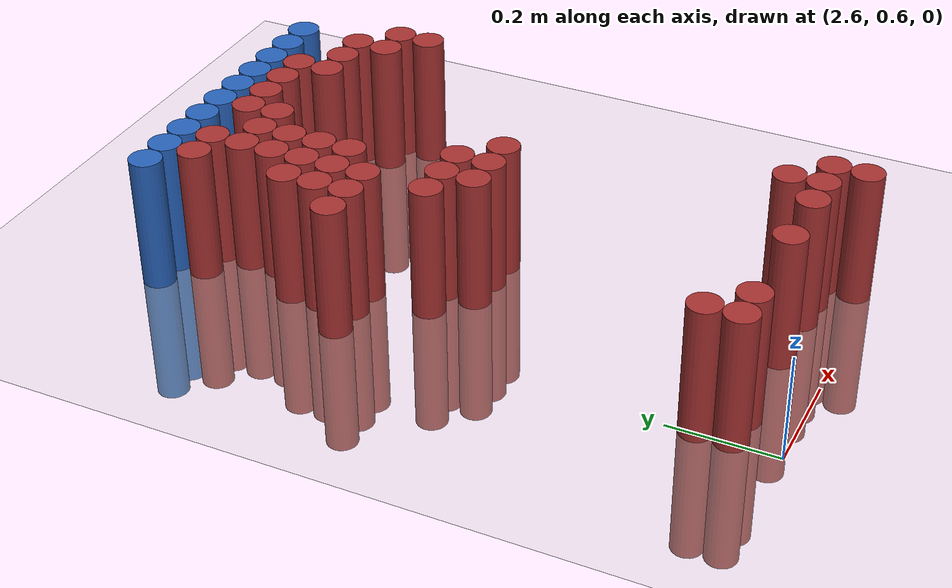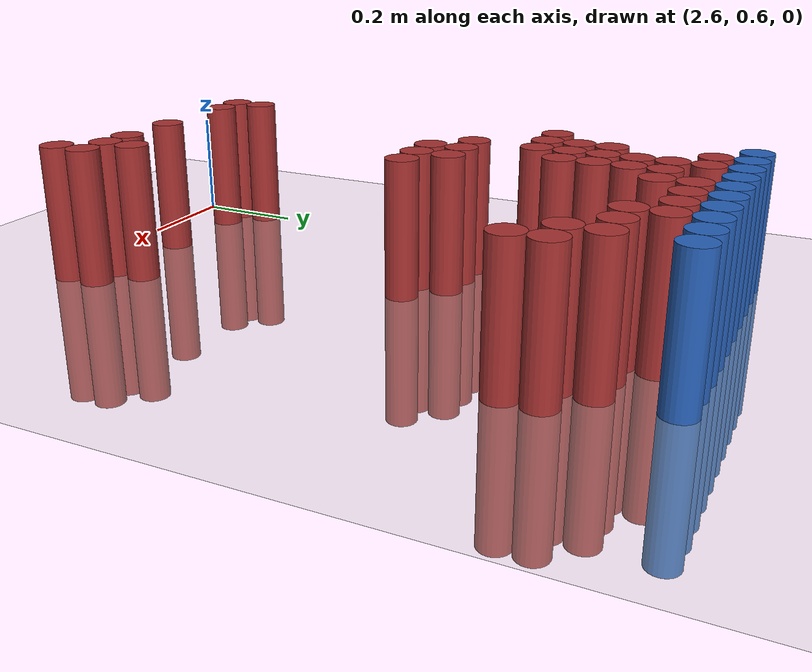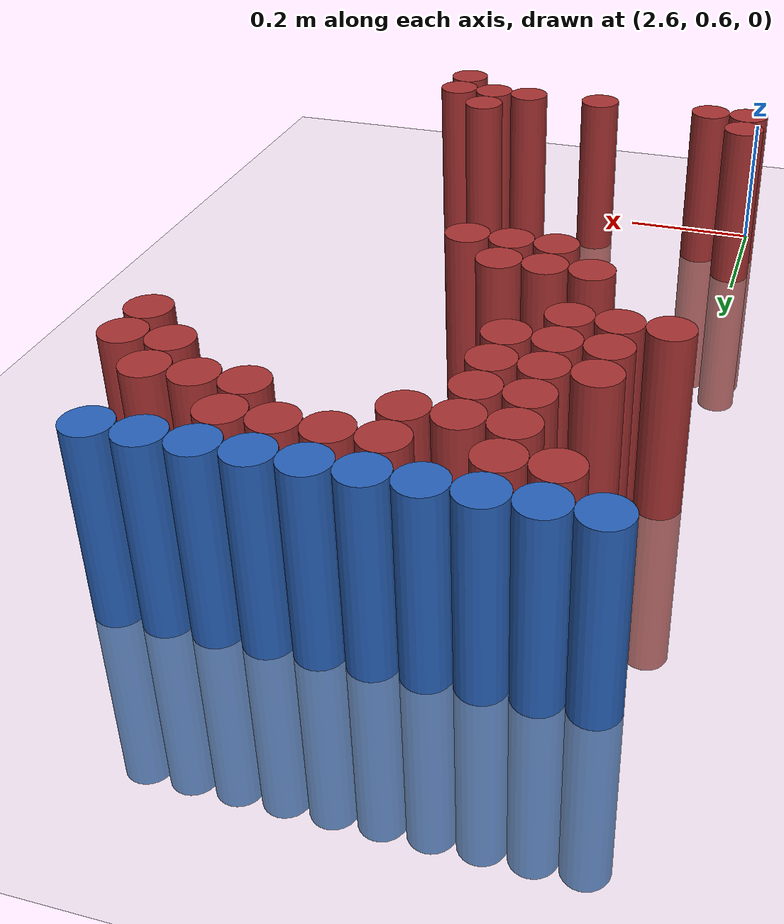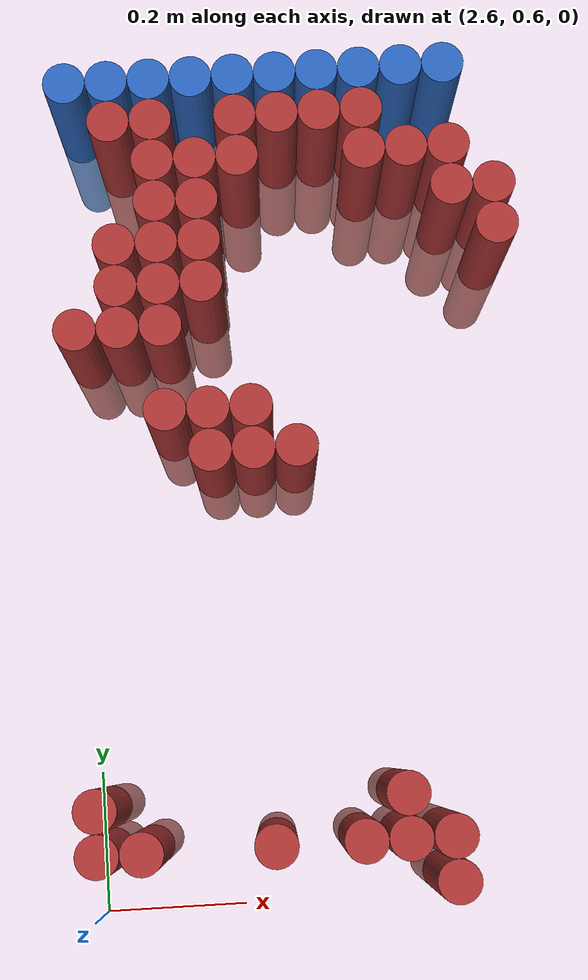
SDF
<sdf version="1.6">
 <world name="default">
  <model name="ground_plane">
   <static>1</static>
   <link name="link">
    <collision name="collision">
     <geometry><plane><normal>0 0 1</normal><size>100 100</size></plane></geometry>
     <surface><friction><ode><mu>100</mu><mu2>50</mu2></ode></friction></surface>
    </collision>
    <visual name="visual">
     <cast_shadows>0</cast_shadows>
     <geometry><plane><normal>0 0 1</normal><size>100 100</size></plane></geometry>
     <material>
      <script><uri>file://media/materials/scripts/gazebo.material</uri><name>Gazebo/Grey</name></script>
     </material>
    </visual>
   </link>
  </model>
  <model name="unit_cylinder_104">
   <static>1</static>
   <pose>2.610000 1.770000 0.000000 0.000000 0.000000 0.000000</pose>
   <link name="link">
    <inertial>
     <mass>1</mass>
     <inertia><ixx>0.145833</ixx><ixy>0</ixy><ixz>0</ixz><iyy>0.145833</iyy><iyz>0</iyz><izz>0.125</izz></inertia>
    </inertial>
    <collision name="collision">
     <geometry><cylinder><radius>0.030000</radius><length>0.5</length></cylinder></geometry>
    </collision>
    <visual name="visual">
     <geometry><cylinder><radius>0.030000</radius><length>0.5</length></cylinder></geometry>
     <material>
      <ambient>0.152000 0.379000 0.720000 1</ambient>
      <diffuse>0.152000 0.379000 0.720000 1</diffuse>
     </material>
     <material>
      <script><name>Gazebo/Grey</name><uri>file://media/materials/scripts/gazebo.material</uri></script>
     </material>
    </visual>
   </link>
  </model>
  <model name="unit_cylinder_105">
   <static>1</static>
   <pose>2.670000 1.770000 0.000000 0.000000 0.000000 0.000000</pose>
   <link name="link">
    <inertial>
     <mass>1</mass>
     <inertia><ixx>0.145833</ixx><ixy>0</ixy><ixz>0</ixz><iyy>0.145833</iyy><iyz>0</iyz><izz>0.125</izz></inertia>
    </inertial>
    <collision name="collision">
     <geometry><cylinder><radius>0.030000</radius><length>0.5</length></cylinder></geometry>
    </collision>
    <visual name="visual">
     <geometry><cylinder><radius>0.030000</radius><length>0.5</length></cylinder></geometry>
     <material>
      <ambient>0.152000 0.379000 0.720000 1</ambient>
      <diffuse>0.152000 0.379000 0.720000 1</diffuse>
     </material>
     <material>
      <script><name>Gazebo/Grey</name><uri>file://media/materials/scripts/gazebo.material</uri></script>
     </material>
    </visual>
   </link>
  </model>
  <model name="unit_cylinder_106">
   <static>1</static>
   <pose>2.730000 1.770000 0.000000 0.000000 0.000000 0.000000</pose>
   <link name="link">
    <inertial>
     <mass>1</mass>
     <inertia><ixx>0.145833</ixx><ixy>0</ixy><ixz>0</ixz><iyy>0.145833</iyy><iyz>0</iyz><izz>0.125</izz></inertia>
    </inertial>
    <collision name="collision">
     <geometry><cylinder><radius>0.030000</radius><length>0.5</length></cylinder></geometry>
    </collision>
    <visual name="visual">
     <geometry><cylinder><radius>0.030000</radius><length>0.5</length></cylinder></geometry>
     <material>
      <ambient>0.152000 0.379000 0.720000 1</ambient>
      <diffuse>0.152000 0.379000 0.720000 1</diffuse>
     </material>
     <material>
      <script><name>Gazebo/Grey</name><uri>file://media/materials/scripts/gazebo.material</uri></script>
     </material>
    </visual>
   </link>
  </model>
  <model name="unit_cylinder_107">
   <static>1</static>
   <pose>2.790000 1.770000 0.000000 0.000000 0.000000 0.000000</pose>
   <link name="link">
    <inertial>
     <mass>1</mass>
     <inertia><ixx>0.145833</ixx><ixy>0</ixy><ixz>0</ixz><iyy>0.145833</iyy><iyz>0</iyz><izz>0.125</izz></inertia>
    </inertial>
    <collision name="collision">
     <geometry><cylinder><radius>0.030000</radius><length>0.5</length></cylinder></geometry>
    </collision>
    <visual name="visual">
     <geometry><cylinder><radius>0.030000</radius><length>0.5</length></cylinder></geometry>
     <material>
      <ambient>0.152000 0.379000 0.720000 1</ambient>
      <diffuse>0.152000 0.379000 0.720000 1</diffuse>
     </material>
     <material>
      <script><name>Gazebo/Grey</name><uri>file://media/materials/scripts/gazebo.material</uri></script>
     </material>
    </visual>
   </link>
  </model>
  <model name="unit_cylinder_108">
   <static>1</static>
   <pose>2.850000 1.770000 0.000000 0.000000 0.000000 0.000000</pose>
   <link name="link">
    <inertial>
     <mass>1</mass>
     <inertia><ixx>0.145833</ixx><ixy>0</ixy><ixz>0</ixz><iyy>0.145833</iyy><iyz>0</iyz><izz>0.125</izz></inertia>
    </inertial>
    <collision name="collision">
     <geometry><cylinder><radius>0.030000</radius><length>0.5</length></cylinder></geometry>
    </collision>
    <visual name="visual">
     <geometry><cylinder><radius>0.030000</radius><length>0.5</length></cylinder></geometry>
     <material>
      <ambient>0.152000 0.379000 0.720000 1</ambient>
      <diffuse>0.152000 0.379000 0.720000 1</diffuse>
     </material>
     <material>
      <script><name>Gazebo/Grey</name><uri>file://media/materials/scripts/gazebo.material</uri></script>
     </material>
    </visual>
   </link>
  </model>
  <model name="unit_cylinder_109">
   <static>1</static>
   <pose>2.910000 1.770000 0.000000 0.000000 0.000000 0.000000</pose>
   <link name="link">
    <inertial>
     <mass>1</mass>
     <inertia><ixx>0.145833</ixx><ixy>0</ixy><ixz>0</ixz><iyy>0.145833</iyy><iyz>0</iyz><izz>0.125</izz></inertia>
    </inertial>
    <collision name="collision">
     <geometry><cylinder><radius>0.030000</radius><length>0.5</length></cylinder></geometry>
    </collision>
    <visual name="visual">
     <geometry><cylinder><radius>0.030000</radius><length>0.5</length></cylinder></geometry>
     <material>
      <ambient>0.152000 0.379000 0.720000 1</ambient>
      <diffuse>0.152000 0.379000 0.720000 1</diffuse>
     </material>
     <material>
      <script><name>Gazebo/Grey</name><uri>file://media/materials/scripts/gazebo.material</uri></script>
     </material>
    </visual>
   </link>
  </model>
  <model name="unit_cylinder_110">
   <static>1</static>
   <pose>2.970000 1.770000 0.000000 0.000000 0.000000 0.000000</pose>
   <link name="link">
    <inertial>
     <mass>1</mass>
     <inertia><ixx>0.145833</ixx><ixy>0</ixy><ixz>0</ixz><iyy>0.145833</iyy><iyz>0</iyz><izz>0.125</izz></inertia>
    </inertial>
    <collision name="collision">
     <geometry><cylinder><radius>0.030000</radius><length>0.5</length></cylinder></geometry>
    </collision>
    <visual name="visual">
     <geometry><cylinder><radius>0.030000</radius><length>0.5</length></cylinder></geometry>
     <material>
      <ambient>0.152000 0.379000 0.720000 1</ambient>
      <diffuse>0.152000 0.379000 0.720000 1</diffuse>
     </material>
     <material>
      <script><name>Gazebo/Grey</name><uri>file://media/materials/scripts/gazebo.material</uri></script>
     </material>
    </visual>
   </link>
  </model>
  <model name="unit_cylinder_111">
   <static>1</static>
   <pose>3.030000 1.770000 0.000000 0.000000 0.000000 0.000000</pose>
   <link name="link">
    <inertial>
     <mass>1</mass>
     <inertia><ixx>0.145833</ixx><ixy>0</ixy><ixz>0</ixz><iyy>0.145833</iyy><iyz>0</iyz><izz>0.125</izz></inertia>
    </inertial>
    <collision name="collision">
     <geometry><cylinder><radius>0.030000</radius><length>0.5</length></cylinder></geometry>
    </collision>
    <visual name="visual">
     <geometry><cylinder><radius>0.030000</radius><length>0.5</length></cylinder></geometry>
     <material>
      <ambient>0.152000 0.379000 0.720000 1</ambient>
      <diffuse>0.152000 0.379000 0.720000 1</diffuse>
     </material>
     <material>
      <script><name>Gazebo/Grey</name><uri>file://media/materials/scripts/gazebo.material</uri></script>
     </material>
    </visual>
   </link>
  </model>
  <model name="unit_cylinder_112">
   <static>1</static>
   <pose>3.090000 1.770000 0.000000 0.000000 0.000000 0.000000</pose>
   <link name="link">
    <inertial>
     <mass>1</mass>
     <inertia><ixx>0.145833</ixx><ixy>0</ixy><ixz>0</ixz><iyy>0.145833</iyy><iyz>0</iyz><izz>0.125</izz></inertia>
    </inertial>
    <collision name="collision">
     <geometry><cylinder><radius>0.030000</radius><length>0.5</length></cylinder></geometry>
    </collision>
    <visual name="visual">
     <geometry><cylinder><radius>0.030000</radius><length>0.5</length></cylinder></geometry>
     <material>
      <ambient>0.152000 0.379000 0.720000 1</ambient>
      <diffuse>0.152000 0.379000 0.720000 1</diffuse>
     </material>
     <material>
      <script><name>Gazebo/Grey</name><uri>file://media/materials/scripts/gazebo.material</uri></script>
     </material>
    </visual>
   </link>
  </model>
  <model name="unit_cylinder_113">
   <static>1</static>
   <pose>3.150000 1.770000 0.000000 0.000000 0.000000 0.000000</pose>
   <link name="link">
    <inertial>
     <mass>1</mass>
     <inertia><ixx>0.145833</ixx><ixy>0</ixy><ixz>0</ixz><iyy>0.145833</iyy><iyz>0</iyz><izz>0.125</izz></inertia>
    </inertial>
    <collision name="collision">
     <geometry><cylinder><radius>0.030000</radius><length>0.5</length></cylinder></geometry>
    </collision>
    <visual name="visual">
     <geometry><cylinder><radius>0.030000</radius><length>0.5</length></cylinder></geometry>
     <material>
      <ambient>0.152000 0.379000 0.720000 1</ambient>
      <diffuse>0.152000 0.379000 0.720000 1</diffuse>
     </material>
     <material>
      <script><name>Gazebo/Grey</name><uri>file://media/materials/scripts/gazebo.material</uri></script>
     </material>
    </visual>
   </link>
  </model>
  <model name="unit_cylinder_131">
   <static>1</static>
   <pose>2.670000 1.710000 0.000000 0.000000 0.000000 0.000000</pose>
   <link name="link">
    <inertial>
     <mass>1</mass>
     <inertia><ixx>0.145833</ixx><ixy>0</ixy><ixz>0</ixz><iyy>0.145833</iyy><iyz>0</iyz><izz>0.125</izz></inertia>
    </inertial>
    <collision name="collision">
     <geometry><cylinder><radius>0.030000</radius><length>0.5</length></cylinder></geometry>
    </collision>
    <visual name="visual">
     <geometry><cylinder><radius>0.030000</radius><length>0.5</length></cylinder></geometry>
     <material>
      <ambient>0.648000 0.192000 0.192000 1</ambient>
      <diffuse>0.648000 0.192000 0.192000 1</diffuse>
     </material>
     <material>
      <script><name>Gazebo/Grey</name><uri>file://media/materials/scripts/gazebo.material</uri></script>
     </material>
    </visual>
   </link>
  </model>
  <model name="unit_cylinder_132">
   <static>1</static>
   <pose>2.730000 1.710000 0.000000 0.000000 0.000000 0.000000</pose>
   <link name="link">
    <inertial>
     <mass>1</mass>
     <inertia><ixx>0.145833</ixx><ixy>0</ixy><ixz>0</ixz><iyy>0.145833</iyy><iyz>0</iyz><izz>0.125</izz></inertia>
    </inertial>
    <collision name="collision">
     <geometry><cylinder><radius>0.030000</radius><length>0.5</length></cylinder></geometry>
    </collision>
    <visual name="visual">
     <geometry><cylinder><radius>0.030000</radius><length>0.5</length></cylinder></geometry>
     <material>
      <ambient>0.648000 0.192000 0.192000 1</ambient>
      <diffuse>0.648000 0.192000 0.192000 1</diffuse>
     </material>
     <material>
      <script><name>Gazebo/Grey</name><uri>file://media/materials/scripts/gazebo.material</uri></script>
     </material>
    </visual>
   </link>
  </model>
  <model name="unit_cylinder_133">
   <static>1</static>
   <pose>2.850000 1.710000 0.000000 0.000000 0.000000 0.000000</pose>
   <link name="link">
    <inertial>
     <mass>1</mass>
     <inertia><ixx>0.145833</ixx><ixy>0</ixy><ixz>0</ixz><iyy>0.145833</iyy><iyz>0</iyz><izz>0.125</izz></inertia>
    </inertial>
    <collision name="collision">
     <geometry><cylinder><radius>0.030000</radius><length>0.5</length></cylinder></geometry>
    </collision>
    <visual name="visual">
     <geometry><cylinder><radius>0.030000</radius><length>0.5</length></cylinder></geometry>
     <material>
      <ambient>0.648000 0.192000 0.192000 1</ambient>
      <diffuse>0.648000 0.192000 0.192000 1</diffuse>
     </material>
     <material>
      <script><name>Gazebo/Grey</name><uri>file://media/materials/scripts/gazebo.material</uri></script>
     </material>
    </visual>
   </link>
  </model>
  <model name="unit_cylinder_134">
   <static>1</static>
   <pose>2.910000 1.710000 0.000000 0.000000 0.000000 0.000000</pose>
   <link name="link">
    <inertial>
     <mass>1</mass>
     <inertia><ixx>0.145833</ixx><ixy>0</ixy><ixz>0</ixz><iyy>0.145833</iyy><iyz>0</iyz><izz>0.125</izz></inertia>
    </inertial>
    <collision name="collision">
     <geometry><cylinder><radius>0.030000</radius><length>0.5</length></cylinder></geometry>
    </collision>
    <visual name="visual">
     <geometry><cylinder><radius>0.030000</radius><length>0.5</length></cylinder></geometry>
     <material>
      <ambient>0.648000 0.192000 0.192000 1</ambient>
      <diffuse>0.648000 0.192000 0.192000 1</diffuse>
     </material>
     <material>
      <script><name>Gazebo/Grey</name><uri>file://media/materials/scripts/gazebo.material</uri></script>
     </material>
    </visual>
   </link>
  </model>
  <model name="unit_cylinder_135">
   <static>1</static>
   <pose>2.970000 1.710000 0.000000 0.000000 0.000000 0.000000</pose>
   <link name="link">
    <inertial>
     <mass>1</mass>
     <inertia><ixx>0.145833</ixx><ixy>0</ixy><ixz>0</ixz><iyy>0.145833</iyy><iyz>0</iyz><izz>0.125</izz></inertia>
    </inertial>
    <collision name="collision">
     <geometry><cylinder><radius>0.030000</radius><length>0.5</length></cylinder></geometry>
    </collision>
    <visual name="visual">
     <geometry><cylinder><radius>0.030000</radius><length>0.5</length></cylinder></geometry>
     <material>
      <ambient>0.648000 0.192000 0.192000 1</ambient>
      <diffuse>0.648000 0.192000 0.192000 1</diffuse>
     </material>
     <material>
      <script><name>Gazebo/Grey</name><uri>file://media/materials/scripts/gazebo.material</uri></script>
     </material>
    </visual>
   </link>
  </model>
  <model name="unit_cylinder_136">
   <static>1</static>
   <pose>3.030000 1.710000 0.000000 0.000000 0.000000 0.000000</pose>
   <link name="link">
    <inertial>
     <mass>1</mass>
     <inertia><ixx>0.145833</ixx><ixy>0</ixy><ixz>0</ixz><iyy>0.145833</iyy><iyz>0</iyz><izz>0.125</izz></inertia>
    </inertial>
    <collision name="collision">
     <geometry><cylinder><radius>0.030000</radius><length>0.5</length></cylinder></geometry>
    </collision>
    <visual name="visual">
     <geometry><cylinder><radius>0.030000</radius><length>0.5</length></cylinder></geometry>
     <material>
      <ambient>0.648000 0.192000 0.192000 1</ambient>
      <diffuse>0.648000 0.192000 0.192000 1</diffuse>
     </material>
     <material>
      <script><name>Gazebo/Grey</name><uri>file://media/materials/scripts/gazebo.material</uri></script>
     </material>
    </visual>
   </link>
  </model>
  <model name="unit_cylinder_143">
   <static>1</static>
   <pose>2.730000 1.650000 0.000000 0.000000 0.000000 0.000000</pose>
   <link name="link">
    <inertial>
     <mass>1</mass>
     <inertia><ixx>0.145833</ixx><ixy>0</ixy><ixz>0</ixz><iyy>0.145833</iyy><iyz>0</iyz><izz>0.125</izz></inertia>
    </inertial>
    <collision name="collision">
     <geometry><cylinder><radius>0.030000</radius><length>0.5</length></cylinder></geometry>
    </collision>
    <visual name="visual">
     <geometry><cylinder><radius>0.030000</radius><length>0.5</length></cylinder></geometry>
     <material>
      <ambient>0.648000 0.192000 0.192000 1</ambient>
      <diffuse>0.648000 0.192000 0.192000 1</diffuse>
     </material>
     <material>
      <script><name>Gazebo/Grey</name><uri>file://media/materials/scripts/gazebo.material</uri></script>
     </material>
    </visual>
   </link>
  </model>
  <model name="unit_cylinder_144">
   <static>1</static>
   <pose>2.790000 1.650000 0.000000 0.000000 0.000000 0.000000</pose>
   <link name="link">
    <inertial>
     <mass>1</mass>
     <inertia><ixx>0.145833</ixx><ixy>0</ixy><ixz>0</ixz><iyy>0.145833</iyy><iyz>0</iyz><izz>0.125</izz></inertia>
    </inertial>
    <collision name="collision">
     <geometry><cylinder><radius>0.030000</radius><length>0.5</length></cylinder></geometry>
    </collision>
    <visual name="visual">
     <geometry><cylinder><radius>0.030000</radius><length>0.5</length></cylinder></geometry>
     <material>
      <ambient>0.648000 0.192000 0.192000 1</ambient>
      <diffuse>0.648000 0.192000 0.192000 1</diffuse>
     </material>
     <material>
      <script><name>Gazebo/Grey</name><uri>file://media/materials/scripts/gazebo.material</uri></script>
     </material>
    </visual>
   </link>
  </model>
  <model name="unit_cylinder_145">
   <static>1</static>
   <pose>2.850000 1.650000 0.000000 0.000000 0.000000 0.000000</pose>
   <link name="link">
    <inertial>
     <mass>1</mass>
     <inertia><ixx>0.145833</ixx><ixy>0</ixy><ixz>0</ixz><iyy>0.145833</iyy><iyz>0</iyz><izz>0.125</izz></inertia>
    </inertial>
    <collision name="collision">
     <geometry><cylinder><radius>0.030000</radius><length>0.5</length></cylinder></geometry>
    </collision>
    <visual name="visual">
     <geometry><cylinder><radius>0.030000</radius><length>0.5</length></cylinder></geometry>
     <material>
      <ambient>0.648000 0.192000 0.192000 1</ambient>
      <diffuse>0.648000 0.192000 0.192000 1</diffuse>
     </material>
     <material>
      <script><name>Gazebo/Grey</name><uri>file://media/materials/scripts/gazebo.material</uri></script>
     </material>
    </visual>
   </link>
  </model>
  <model name="unit_cylinder_146">
   <static>1</static>
   <pose>3.030000 1.650000 0.000000 0.000000 0.000000 0.000000</pose>
   <link name="link">
    <inertial>
     <mass>1</mass>
     <inertia><ixx>0.145833</ixx><ixy>0</ixy><ixz>0</ixz><iyy>0.145833</iyy><iyz>0</iyz><izz>0.125</izz></inertia>
    </inertial>
    <collision name="collision">
     <geometry><cylinder><radius>0.030000</radius><length>0.5</length></cylinder></geometry>
    </collision>
    <visual name="visual">
     <geometry><cylinder><radius>0.030000</radius><length>0.5</length></cylinder></geometry>
     <material>
      <ambient>0.648000 0.192000 0.192000 1</ambient>
      <diffuse>0.648000 0.192000 0.192000 1</diffuse>
     </material>
     <material>
      <script><name>Gazebo/Grey</name><uri>file://media/materials/scripts/gazebo.material</uri></script>
     </material>
    </visual>
   </link>
  </model>
  <model name="unit_cylinder_147">
   <static>1</static>
   <pose>3.090000 1.650000 0.000000 0.000000 0.000000 0.000000</pose>
   <link name="link">
    <inertial>
     <mass>1</mass>
     <inertia><ixx>0.145833</ixx><ixy>0</ixy><ixz>0</ixz><iyy>0.145833</iyy><iyz>0</iyz><izz>0.125</izz></inertia>
    </inertial>
    <collision name="collision">
     <geometry><cylinder><radius>0.030000</radius><length>0.5</length></cylinder></geometry>
    </collision>
    <visual name="visual">
     <geometry><cylinder><radius>0.030000</radius><length>0.5</length></cylinder></geometry>
     <material>
      <ambient>0.648000 0.192000 0.192000 1</ambient>
      <diffuse>0.648000 0.192000 0.192000 1</diffuse>
     </material>
     <material>
      <script><name>Gazebo/Grey</name><uri>file://media/materials/scripts/gazebo.material</uri></script>
     </material>
    </visual>
   </link>
  </model>
  <model name="unit_cylinder_148">
   <static>1</static>
   <pose>3.150000 1.650000 0.000000 0.000000 0.000000 0.000000</pose>
   <link name="link">
    <inertial>
     <mass>1</mass>
     <inertia><ixx>0.145833</ixx><ixy>0</ixy><ixz>0</ixz><iyy>0.145833</iyy><iyz>0</iyz><izz>0.125</izz></inertia>
    </inertial>
    <collision name="collision">
     <geometry><cylinder><radius>0.030000</radius><length>0.5</length></cylinder></geometry>
    </collision>
    <visual name="visual">
     <geometry><cylinder><radius>0.030000</radius><length>0.5</length></cylinder></geometry>
     <material>
      <ambient>0.648000 0.192000 0.192000 1</ambient>
      <diffuse>0.648000 0.192000 0.192000 1</diffuse>
     </material>
     <material>
      <script><name>Gazebo/Grey</name><uri>file://media/materials/scripts/gazebo.material</uri></script>
     </material>
    </visual>
   </link>
  </model>
  <model name="unit_cylinder_156">
   <static>1</static>
   <pose>2.730000 1.590000 0.000000 0.000000 0.000000 0.000000</pose>
   <link name="link">
    <inertial>
     <mass>1</mass>
     <inertia><ixx>0.145833</ixx><ixy>0</ixy><ixz>0</ixz><iyy>0.145833</iyy><iyz>0</iyz><izz>0.125</izz></inertia>
    </inertial>
    <collision name="collision">
     <geometry><cylinder><radius>0.030000</radius><length>0.5</length></cylinder></geometry>
    </collision>
    <visual name="visual">
     <geometry><cylinder><radius>0.030000</radius><length>0.5</length></cylinder></geometry>
     <material>
      <ambient>0.648000 0.192000 0.192000 1</ambient>
      <diffuse>0.648000 0.192000 0.192000 1</diffuse>
     </material>
     <material>
      <script><name>Gazebo/Grey</name><uri>file://media/materials/scripts/gazebo.material</uri></script>
     </material>
    </visual>
   </link>
  </model>
  <model name="unit_cylinder_157">
   <static>1</static>
   <pose>2.790000 1.590000 0.000000 0.000000 0.000000 0.000000</pose>
   <link name="link">
    <inertial>
     <mass>1</mass>
     <inertia><ixx>0.145833</ixx><ixy>0</ixy><ixz>0</ixz><iyy>0.145833</iyy><iyz>0</iyz><izz>0.125</izz></inertia>
    </inertial>
    <collision name="collision">
     <geometry><cylinder><radius>0.030000</radius><length>0.5</length></cylinder></geometry>
    </collision>
    <visual name="visual">
     <geometry><cylinder><radius>0.030000</radius><length>0.5</length></cylinder></geometry>
     <material>
      <ambient>0.648000 0.192000 0.192000 1</ambient>
      <diffuse>0.648000 0.192000 0.192000 1</diffuse>
     </material>
     <material>
      <script><name>Gazebo/Grey</name><uri>file://media/materials/scripts/gazebo.material</uri></script>
     </material>
    </visual>
   </link>
  </model>
  <model name="unit_cylinder_158">
   <static>1</static>
   <pose>3.150000 1.590000 0.000000 0.000000 0.000000 0.000000</pose>
   <link name="link">
    <inertial>
     <mass>1</mass>
     <inertia><ixx>0.145833</ixx><ixy>0</ixy><ixz>0</ixz><iyy>0.145833</iyy><iyz>0</iyz><izz>0.125</izz></inertia>
    </inertial>
    <collision name="collision">
     <geometry><cylinder><radius>0.030000</radius><length>0.5</length></cylinder></geometry>
    </collision>
    <visual name="visual">
     <geometry><cylinder><radius>0.030000</radius><length>0.5</length></cylinder></geometry>
     <material>
      <ambient>0.648000 0.192000 0.192000 1</ambient>
      <diffuse>0.648000 0.192000 0.192000 1</diffuse>
     </material>
     <material>
      <script><name>Gazebo/Grey</name><uri>file://media/materials/scripts/gazebo.material</uri></script>
     </material>
    </visual>
   </link>
  </model>
  <model name="unit_cylinder_159">
   <static>1</static>
   <pose>3.210000 1.590000 0.000000 0.000000 0.000000 0.000000</pose>
   <link name="link">
    <inertial>
     <mass>1</mass>
     <inertia><ixx>0.145833</ixx><ixy>0</ixy><ixz>0</ixz><iyy>0.145833</iyy><iyz>0</iyz><izz>0.125</izz></inertia>
    </inertial>
    <collision name="collision">
     <geometry><cylinder><radius>0.030000</radius><length>0.5</length></cylinder></geometry>
    </collision>
    <visual name="visual">
     <geometry><cylinder><radius>0.030000</radius><length>0.5</length></cylinder></geometry>
     <material>
      <ambient>0.648000 0.192000 0.192000 1</ambient>
      <diffuse>0.648000 0.192000 0.192000 1</diffuse>
     </material>
     <material>
      <script><name>Gazebo/Grey</name><uri>file://media/materials/scripts/gazebo.material</uri></script>
     </material>
    </visual>
   </link>
  </model>
  <model name="unit_cylinder_165">
   <static>1</static>
   <pose>2.670000 1.530000 0.000000 0.000000 0.000000 0.000000</pose>
   <link name="link">
    <inertial>
     <mass>1</mass>
     <inertia><ixx>0.145833</ixx><ixy>0</ixy><ixz>0</ixz><iyy>0.145833</iyy><iyz>0</iyz><izz>0.125</izz></inertia>
    </inertial>
    <collision name="collision">
     <geometry><cylinder><radius>0.030000</radius><length>0.5</length></cylinder></geometry>
    </collision>
    <visual name="visual">
     <geometry><cylinder><radius>0.030000</radius><length>0.5</length></cylinder></geometry>
     <material>
      <ambient>0.648000 0.192000 0.192000 1</ambient>
      <diffuse>0.648000 0.192000 0.192000 1</diffuse>
     </material>
     <material>
      <script><name>Gazebo/Grey</name><uri>file://media/materials/scripts/gazebo.material</uri></script>
     </material>
    </visual>
   </link>
  </model>
  <model name="unit_cylinder_166">
   <static>1</static>
   <pose>2.730000 1.530000 0.000000 0.000000 0.000000 0.000000</pose>
   <link name="link">
    <inertial>
     <mass>1</mass>
     <inertia><ixx>0.145833</ixx><ixy>0</ixy><ixz>0</ixz><iyy>0.145833</iyy><iyz>0</iyz><izz>0.125</izz></inertia>
    </inertial>
    <collision name="collision">
     <geometry><cylinder><radius>0.030000</radius><length>0.5</length></cylinder></geometry>
    </collision>
    <visual name="visual">
     <geometry><cylinder><radius>0.030000</radius><length>0.5</length></cylinder></geometry>
     <material>
      <ambient>0.648000 0.192000 0.192000 1</ambient>
      <diffuse>0.648000 0.192000 0.192000 1</diffuse>
     </material>
     <material>
      <script><name>Gazebo/Grey</name><uri>file://media/materials/scripts/gazebo.material</uri></script>
     </material>
    </visual>
   </link>
  </model>
  <model name="unit_cylinder_167">
   <static>1</static>
   <pose>2.790000 1.530000 0.000000 0.000000 0.000000 0.000000</pose>
   <link name="link">
    <inertial>
     <mass>1</mass>
     <inertia><ixx>0.145833</ixx><ixy>0</ixy><ixz>0</ixz><iyy>0.145833</iyy><iyz>0</iyz><izz>0.125</izz></inertia>
    </inertial>
    <collision name="collision">
     <geometry><cylinder><radius>0.030000</radius><length>0.5</length></cylinder></geometry>
    </collision>
    <visual name="visual">
     <geometry><cylinder><radius>0.030000</radius><length>0.5</length></cylinder></geometry>
     <material>
      <ambient>0.648000 0.192000 0.192000 1</ambient>
      <diffuse>0.648000 0.192000 0.192000 1</diffuse>
     </material>
     <material>
      <script><name>Gazebo/Grey</name><uri>file://media/materials/scripts/gazebo.material</uri></script>
     </material>
    </visual>
   </link>
  </model>
  <model name="unit_cylinder_168">
   <static>1</static>
   <pose>3.210000 1.530000 0.000000 0.000000 0.000000 0.000000</pose>
   <link name="link">
    <inertial>
     <mass>1</mass>
     <inertia><ixx>0.145833</ixx><ixy>0</ixy><ixz>0</ixz><iyy>0.145833</iyy><iyz>0</iyz><izz>0.125</izz></inertia>
    </inertial>
    <collision name="collision">
     <geometry><cylinder><radius>0.030000</radius><length>0.5</length></cylinder></geometry>
    </collision>
    <visual name="visual">
     <geometry><cylinder><radius>0.030000</radius><length>0.5</length></cylinder></geometry>
     <material>
      <ambient>0.648000 0.192000 0.192000 1</ambient>
      <diffuse>0.648000 0.192000 0.192000 1</diffuse>
     </material>
     <material>
      <script><name>Gazebo/Grey</name><uri>file://media/materials/scripts/gazebo.material</uri></script>
     </material>
    </visual>
   </link>
  </model>
  <model name="unit_cylinder_175">
   <static>1</static>
   <pose>2.670000 1.470000 0.000000 0.000000 0.000000 0.000000</pose>
   <link name="link">
    <inertial>
     <mass>1</mass>
     <inertia><ixx>0.145833</ixx><ixy>0</ixy><ixz>0</ixz><iyy>0.145833</iyy><iyz>0</iyz><izz>0.125</izz></inertia>
    </inertial>
    <collision name="collision">
     <geometry><cylinder><radius>0.030000</radius><length>0.5</length></cylinder></geometry>
    </collision>
    <visual name="visual">
     <geometry><cylinder><radius>0.030000</radius><length>0.5</length></cylinder></geometry>
     <material>
      <ambient>0.648000 0.192000 0.192000 1</ambient>
      <diffuse>0.648000 0.192000 0.192000 1</diffuse>
     </material>
     <material>
      <script><name>Gazebo/Grey</name><uri>file://media/materials/scripts/gazebo.material</uri></script>
     </material>
    </visual>
   </link>
  </model>
  <model name="unit_cylinder_176">
   <static>1</static>
   <pose>2.730000 1.470000 0.000000 0.000000 0.000000 0.000000</pose>
   <link name="link">
    <inertial>
     <mass>1</mass>
     <inertia><ixx>0.145833</ixx><ixy>0</ixy><ixz>0</ixz><iyy>0.145833</iyy><iyz>0</iyz><izz>0.125</izz></inertia>
    </inertial>
    <collision name="collision">
     <geometry><cylinder><radius>0.030000</radius><length>0.5</length></cylinder></geometry>
    </collision>
    <visual name="visual">
     <geometry><cylinder><radius>0.030000</radius><length>0.5</length></cylinder></geometry>
     <material>
      <ambient>0.648000 0.192000 0.192000 1</ambient>
      <diffuse>0.648000 0.192000 0.192000 1</diffuse>
     </material>
     <material>
      <script><name>Gazebo/Grey</name><uri>file://media/materials/scripts/gazebo.material</uri></script>
     </material>
    </visual>
   </link>
  </model>
  <model name="unit_cylinder_177">
   <static>1</static>
   <pose>2.790000 1.470000 0.000000 0.000000 0.000000 0.000000</pose>
   <link name="link">
    <inertial>
     <mass>1</mass>
     <inertia><ixx>0.145833</ixx><ixy>0</ixy><ixz>0</ixz><iyy>0.145833</iyy><iyz>0</iyz><izz>0.125</izz></inertia>
    </inertial>
    <collision name="collision">
     <geometry><cylinder><radius>0.030000</radius><length>0.5</length></cylinder></geometry>
    </collision>
    <visual name="visual">
     <geometry><cylinder><radius>0.030000</radius><length>0.5</length></cylinder></geometry>
     <material>
      <ambient>0.648000 0.192000 0.192000 1</ambient>
      <diffuse>0.648000 0.192000 0.192000 1</diffuse>
     </material>
     <material>
      <script><name>Gazebo/Grey</name><uri>file://media/materials/scripts/gazebo.material</uri></script>
     </material>
    </visual>
   </link>
  </model>
  <model name="unit_cylinder_182">
   <static>1</static>
   <pose>2.610000 1.410000 0.000000 0.000000 0.000000 0.000000</pose>
   <link name="link">
    <inertial>
     <mass>1</mass>
     <inertia><ixx>0.145833</ixx><ixy>0</ixy><ixz>0</ixz><iyy>0.145833</iyy><iyz>0</iyz><izz>0.125</izz></inertia>
    </inertial>
    <collision name="collision">
     <geometry><cylinder><radius>0.030000</radius><length>0.5</length></cylinder></geometry>
    </collision>
    <visual name="visual">
     <geometry><cylinder><radius>0.030000</radius><length>0.5</length></cylinder></geometry>
     <material>
      <ambient>0.648000 0.192000 0.192000 1</ambient>
      <diffuse>0.648000 0.192000 0.192000 1</diffuse>
     </material>
     <material>
      <script><name>Gazebo/Grey</name><uri>file://media/materials/scripts/gazebo.material</uri></script>
     </material>
    </visual>
   </link>
  </model>
  <model name="unit_cylinder_183">
   <static>1</static>
   <pose>2.670000 1.410000 0.000000 0.000000 0.000000 0.000000</pose>
   <link name="link">
    <inertial>
     <mass>1</mass>
     <inertia><ixx>0.145833</ixx><ixy>0</ixy><ixz>0</ixz><iyy>0.145833</iyy><iyz>0</iyz><izz>0.125</izz></inertia>
    </inertial>
    <collision name="collision">
     <geometry><cylinder><radius>0.030000</radius><length>0.5</length></cylinder></geometry>
    </collision>
    <visual name="visual">
     <geometry><cylinder><radius>0.030000</radius><length>0.5</length></cylinder></geometry>
     <material>
      <ambient>0.648000 0.192000 0.192000 1</ambient>
      <diffuse>0.648000 0.192000 0.192000 1</diffuse>
     </material>
     <material>
      <script><name>Gazebo/Grey</name><uri>file://media/materials/scripts/gazebo.material</uri></script>
     </material>
    </visual>
   </link>
  </model>
  <model name="unit_cylinder_184">
   <static>1</static>
   <pose>2.730000 1.410000 0.000000 0.000000 0.000000 0.000000</pose>
   <link name="link">
    <inertial>
     <mass>1</mass>
     <inertia><ixx>0.145833</ixx><ixy>0</ixy><ixz>0</ixz><iyy>0.145833</iyy><iyz>0</iyz><izz>0.125</izz></inertia>
    </inertial>
    <collision name="collision">
     <geometry><cylinder><radius>0.030000</radius><length>0.5</length></cylinder></geometry>
    </collision>
    <visual name="visual">
     <geometry><cylinder><radius>0.030000</radius><length>0.5</length></cylinder></geometry>
     <material>
      <ambient>0.648000 0.192000 0.192000 1</ambient>
      <diffuse>0.648000 0.192000 0.192000 1</diffuse>
     </material>
     <material>
      <script><name>Gazebo/Grey</name><uri>file://media/materials/scripts/gazebo.material</uri></script>
     </material>
    </visual>
   </link>
  </model>
  <model name="unit_cylinder_186">
   <static>1</static>
   <pose>2.730000 1.290000 0.000000 0.000000 0.000000 0.000000</pose>
   <link name="link">
    <inertial>
     <mass>1</mass>
     <inertia><ixx>0.145833</ixx><ixy>0</ixy><ixz>0</ixz><iyy>0.145833</iyy><iyz>0</iyz><izz>0.125</izz></inertia>
    </inertial>
    <collision name="collision">
     <geometry><cylinder><radius>0.030000</radius><length>0.5</length></cylinder></geometry>
    </collision>
    <visual name="visual">
     <geometry><cylinder><radius>0.030000</radius><length>0.5</length></cylinder></geometry>
     <material>
      <ambient>0.648000 0.192000 0.192000 1</ambient>
      <diffuse>0.648000 0.192000 0.192000 1</diffuse>
     </material>
     <material>
      <script><name>Gazebo/Grey</name><uri>file://media/materials/scripts/gazebo.material</uri></script>
     </material>
    </visual>
   </link>
  </model>
  <model name="unit_cylinder_187">
   <static>1</static>
   <pose>2.790000 1.290000 0.000000 0.000000 0.000000 0.000000</pose>
   <link name="link">
    <inertial>
     <mass>1</mass>
     <inertia><ixx>0.145833</ixx><ixy>0</ixy><ixz>0</ixz><iyy>0.145833</iyy><iyz>0</iyz><izz>0.125</izz></inertia>
    </inertial>
    <collision name="collision">
     <geometry><cylinder><radius>0.030000</radius><length>0.5</length></cylinder></geometry>
    </collision>
    <visual name="visual">
     <geometry><cylinder><radius>0.030000</radius><length>0.5</length></cylinder></geometry>
     <material>
      <ambient>0.648000 0.192000 0.192000 1</ambient>
      <diffuse>0.648000 0.192000 0.192000 1</diffuse>
     </material>
     <material>
      <script><name>Gazebo/Grey</name><uri>file://media/materials/scripts/gazebo.material</uri></script>
     </material>
    </visual>
   </link>
  </model>
  <model name="unit_cylinder_188">
   <static>1</static>
   <pose>2.850000 1.290000 0.000000 0.000000 0.000000 0.000000</pose>
   <link name="link">
    <inertial>
     <mass>1</mass>
     <inertia><ixx>0.145833</ixx><ixy>0</ixy><ixz>0</ixz><iyy>0.145833</iyy><iyz>0</iyz><izz>0.125</izz></inertia>
    </inertial>
    <collision name="collision">
     <geometry><cylinder><radius>0.030000</radius><length>0.5</length></cylinder></geometry>
    </collision>
    <visual name="visual">
     <geometry><cylinder><radius>0.030000</radius><length>0.5</length></cylinder></geometry>
     <material>
      <ambient>0.648000 0.192000 0.192000 1</ambient>
      <diffuse>0.648000 0.192000 0.192000 1</diffuse>
     </material>
     <material>
      <script><name>Gazebo/Grey</name><uri>file://media/materials/scripts/gazebo.material</uri></script>
     </material>
    </visual>
   </link>
  </model>
  <model name="unit_cylinder_189">
   <static>1</static>
   <pose>2.790000 1.230000 0.000000 0.000000 0.000000 0.000000</pose>
   <link name="link">
    <inertial>
     <mass>1</mass>
     <inertia><ixx>0.145833</ixx><ixy>0</ixy><ixz>0</ixz><iyy>0.145833</iyy><iyz>0</iyz><izz>0.125</izz></inertia>
    </inertial>
    <collision name="collision">
     <geometry><cylinder><radius>0.030000</radius><length>0.5</length></cylinder></geometry>
    </collision>
    <visual name="visual">
     <geometry><cylinder><radius>0.030000</radius><length>0.5</length></cylinder></geometry>
     <material>
      <ambient>0.648000 0.192000 0.192000 1</ambient>
      <diffuse>0.648000 0.192000 0.192000 1</diffuse>
     </material>
     <material>
      <script><name>Gazebo/Grey</name><uri>file://media/materials/scripts/gazebo.material</uri></script>
     </material>
    </visual>
   </link>
  </model>
  <model name="unit_cylinder_190">
   <static>1</static>
   <pose>2.850000 1.230000 0.000000 0.000000 0.000000 0.000000</pose>
   <link name="link">
    <inertial>
     <mass>1</mass>
     <inertia><ixx>0.145833</ixx><ixy>0</ixy><ixz>0</ixz><iyy>0.145833</iyy><iyz>0</iyz><izz>0.125</izz></inertia>
    </inertial>
    <collision name="collision">
     <geometry><cylinder><radius>0.030000</radius><length>0.5</length></cylinder></geometry>
    </collision>
    <visual name="visual">
     <geometry><cylinder><radius>0.030000</radius><length>0.5</length></cylinder></geometry>
     <material>
      <ambient>0.648000 0.192000 0.192000 1</ambient>
      <diffuse>0.648000 0.192000 0.192000 1</diffuse>
     </material>
     <material>
      <script><name>Gazebo/Grey</name><uri>file://media/materials/scripts/gazebo.material</uri></script>
     </material>
    </visual>
   </link>
  </model>
  <model name="unit_cylinder_191">
   <static>1</static>
   <pose>2.910000 1.230000 0.000000 0.000000 0.000000 0.000000</pose>
   <link name="link">
    <inertial>
     <mass>1</mass>
     <inertia><ixx>0.145833</ixx><ixy>0</ixy><ixz>0</ixz><iyy>0.145833</iyy><iyz>0</iyz><izz>0.125</izz></inertia>
    </inertial>
    <collision name="collision">
     <geometry><cylinder><radius>0.030000</radius><length>0.5</length></cylinder></geometry>
    </collision>
    <visual name="visual">
     <geometry><cylinder><radius>0.030000</radius><length>0.5</length></cylinder></geometry>
     <material>
      <ambient>0.648000 0.192000 0.192000 1</ambient>
      <diffuse>0.648000 0.192000 0.192000 1</diffuse>
     </material>
     <material>
      <script><name>Gazebo/Grey</name><uri>file://media/materials/scripts/gazebo.material</uri></script>
     </material>
    </visual>
   </link>
  </model>
  <model name="unit_cylinder_212">
   <static>1</static>
   <pose>2.610000 0.750000 0.000000 0.000000 0.000000 0.000000</pose>
   <link name="link">
    <inertial>
     <mass>1</mass>
     <inertia><ixx>0.145833</ixx><ixy>0</ixy><ixz>0</ixz><iyy>0.145833</iyy><iyz>0</iyz><izz>0.125</izz></inertia>
    </inertial>
    <collision name="collision">
     <geometry><cylinder><radius>0.030000</radius><length>0.5</length></cylinder></geometry>
    </collision>
    <visual name="visual">
     <geometry><cylinder><radius>0.030000</radius><length>0.5</length></cylinder></geometry>
     <material>
      <ambient>0.648000 0.192000 0.192000 1</ambient>
      <diffuse>0.648000 0.192000 0.192000 1</diffuse>
     </material>
     <material>
      <script><name>Gazebo/Grey</name><uri>file://media/materials/scripts/gazebo.material</uri></script>
     </material>
    </visual>
   </link>
  </model>
  <model name="unit_cylinder_213">
   <static>1</static>
   <pose>3.030000 0.750000 0.000000 0.000000 0.000000 0.000000</pose>
   <link name="link">
    <inertial>
     <mass>1</mass>
     <inertia><ixx>0.145833</ixx><ixy>0</ixy><ixz>0</ixz><iyy>0.145833</iyy><iyz>0</iyz><izz>0.125</izz></inertia>
    </inertial>
    <collision name="collision">
     <geometry><cylinder><radius>0.030000</radius><length>0.5</length></cylinder></geometry>
    </collision>
    <visual name="visual">
     <geometry><cylinder><radius>0.030000</radius><length>0.5</length></cylinder></geometry>
     <material>
      <ambient>0.648000 0.192000 0.192000 1</ambient>
      <diffuse>0.648000 0.192000 0.192000 1</diffuse>
     </material>
     <material>
      <script><name>Gazebo/Grey</name><uri>file://media/materials/scripts/gazebo.material</uri></script>
     </material>
    </visual>
   </link>
  </model>
  <model name="unit_cylinder_217">
   <static>1</static>
   <pose>2.610000 0.690000 0.000000 0.000000 0.000000 0.000000</pose>
   <link name="link">
    <inertial>
     <mass>1</mass>
     <inertia><ixx>0.145833</ixx><ixy>0</ixy><ixz>0</ixz><iyy>0.145833</iyy><iyz>0</iyz><izz>0.125</izz></inertia>
    </inertial>
    <collision name="collision">
     <geometry><cylinder><radius>0.030000</radius><length>0.5</length></cylinder></geometry>
    </collision>
    <visual name="visual">
     <geometry><cylinder><radius>0.030000</radius><length>0.5</length></cylinder></geometry>
     <material>
      <ambient>0.648000 0.192000 0.192000 1</ambient>
      <diffuse>0.648000 0.192000 0.192000 1</diffuse>
     </material>
     <material>
      <script><name>Gazebo/Grey</name><uri>file://media/materials/scripts/gazebo.material</uri></script>
     </material>
    </visual>
   </link>
  </model>
  <model name="unit_cylinder_218">
   <static>1</static>
   <pose>2.670000 0.690000 0.000000 0.000000 0.000000 0.000000</pose>
   <link name="link">
    <inertial>
     <mass>1</mass>
     <inertia><ixx>0.145833</ixx><ixy>0</ixy><ixz>0</ixz><iyy>0.145833</iyy><iyz>0</iyz><izz>0.125</izz></inertia>
    </inertial>
    <collision name="collision">
     <geometry><cylinder><radius>0.030000</radius><length>0.5</length></cylinder></geometry>
    </collision>
    <visual name="visual">
     <geometry><cylinder><radius>0.030000</radius><length>0.5</length></cylinder></geometry>
     <material>
      <ambient>0.648000 0.192000 0.192000 1</ambient>
      <diffuse>0.648000 0.192000 0.192000 1</diffuse>
     </material>
     <material>
      <script><name>Gazebo/Grey</name><uri>file://media/materials/scripts/gazebo.material</uri></script>
     </material>
    </visual>
   </link>
  </model>
  <model name="unit_cylinder_219">
   <static>1</static>
   <pose>2.850000 0.690000 0.000000 0.000000 0.000000 0.000000</pose>
   <link name="link">
    <inertial>
     <mass>1</mass>
     <inertia><ixx>0.145833</ixx><ixy>0</ixy><ixz>0</ixz><iyy>0.145833</iyy><iyz>0</iyz><izz>0.125</izz></inertia>
    </inertial>
    <collision name="collision">
     <geometry><cylinder><radius>0.030000</radius><length>0.5</length></cylinder></geometry>
    </collision>
    <visual name="visual">
     <geometry><cylinder><radius>0.030000</radius><length>0.5</length></cylinder></geometry>
     <material>
      <ambient>0.648000 0.192000 0.192000 1</ambient>
      <diffuse>0.648000 0.192000 0.192000 1</diffuse>
     </material>
     <material>
      <script><name>Gazebo/Grey</name><uri>file://media/materials/scripts/gazebo.material</uri></script>
     </material>
    </visual>
   </link>
  </model>
  <model name="unit_cylinder_220">
   <static>1</static>
   <pose>2.970000 0.690000 0.000000 0.000000 0.000000 0.000000</pose>
   <link name="link">
    <inertial>
     <mass>1</mass>
     <inertia><ixx>0.145833</ixx><ixy>0</ixy><ixz>0</ixz><iyy>0.145833</iyy><iyz>0</iyz><izz>0.125</izz></inertia>
    </inertial>
    <collision name="collision">
     <geometry><cylinder><radius>0.030000</radius><length>0.5</length></cylinder></geometry>
    </collision>
    <visual name="visual">
     <geometry><cylinder><radius>0.030000</radius><length>0.5</length></cylinder></geometry>
     <material>
      <ambient>0.648000 0.192000 0.192000 1</ambient>
      <diffuse>0.648000 0.192000 0.192000 1</diffuse>
     </material>
     <material>
      <script><name>Gazebo/Grey</name><uri>file://media/materials/scripts/gazebo.material</uri></script>
     </material>
    </visual>
   </link>
  </model>
  <model name="unit_cylinder_221">
   <static>1</static>
   <pose>3.030000 0.690000 0.000000 0.000000 0.000000 0.000000</pose>
   <link name="link">
    <inertial>
     <mass>1</mass>
     <inertia><ixx>0.145833</ixx><ixy>0</ixy><ixz>0</ixz><iyy>0.145833</iyy><iyz>0</iyz><izz>0.125</izz></inertia>
    </inertial>
    <collision name="collision">
     <geometry><cylinder><radius>0.030000</radius><length>0.5</length></cylinder></geometry>
    </collision>
    <visual name="visual">
     <geometry><cylinder><radius>0.030000</radius><length>0.5</length></cylinder></geometry>
     <material>
      <ambient>0.648000 0.192000 0.192000 1</ambient>
      <diffuse>0.648000 0.192000 0.192000 1</diffuse>
     </material>
     <material>
      <script><name>Gazebo/Grey</name><uri>file://media/materials/scripts/gazebo.material</uri></script>
     </material>
    </visual>
   </link>
  </model>
  <model name="unit_cylinder_222">
   <static>1</static>
   <pose>3.090000 0.690000 0.000000 0.000000 0.000000 0.000000</pose>
   <link name="link">
    <inertial>
     <mass>1</mass>
     <inertia><ixx>0.145833</ixx><ixy>0</ixy><ixz>0</ixz><iyy>0.145833</iyy><iyz>0</iyz><izz>0.125</izz></inertia>
    </inertial>
    <collision name="collision">
     <geometry><cylinder><radius>0.030000</radius><length>0.5</length></cylinder></geometry>
    </collision>
    <visual name="visual">
     <geometry><cylinder><radius>0.030000</radius><length>0.5</length></cylinder></geometry>
     <material>
      <ambient>0.648000 0.192000 0.192000 1</ambient>
      <diffuse>0.648000 0.192000 0.192000 1</diffuse>
     </material>
     <material>
      <script><name>Gazebo/Grey</name><uri>file://media/materials/scripts/gazebo.material</uri></script>
     </material>
    </visual>
   </link>
  </model>
  <model name="unit_cylinder_234">
   <static>1</static>
   <pose>3.090000 0.630000 0.000000 0.000000 0.000000 0.000000</pose>
   <link name="link">
    <inertial>
     <mass>1</mass>
     <inertia><ixx>0.145833</ixx><ixy>0</ixy><ixz>0</ixz><iyy>0.145833</iyy><iyz>0</iyz><izz>0.125</izz></inertia>
    </inertial>
    <collision name="collision">
     <geometry><cylinder><radius>0.030000</radius><length>0.5</length></cylinder></geometry>
    </collision>
    <visual name="visual">
     <geometry><cylinder><radius>0.030000</radius><length>0.5</length></cylinder></geometry>
     <material>
      <ambient>0.648000 0.192000 0.192000 1</ambient>
      <diffuse>0.648000 0.192000 0.192000 1</diffuse>
     </material>
     <material>
      <script><name>Gazebo/Grey</name><uri>file://media/materials/scripts/gazebo.material</uri></script>
     </material>
    </visual>
   </link>
  </model>
 </world>
</sdf>
